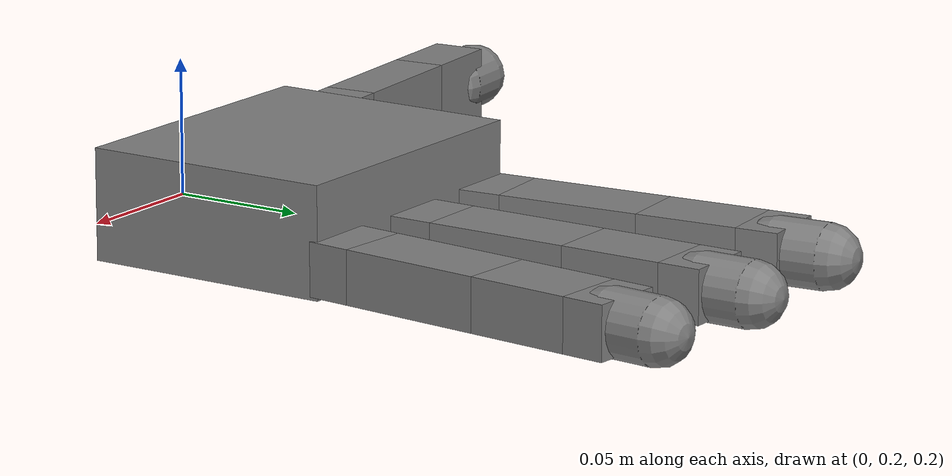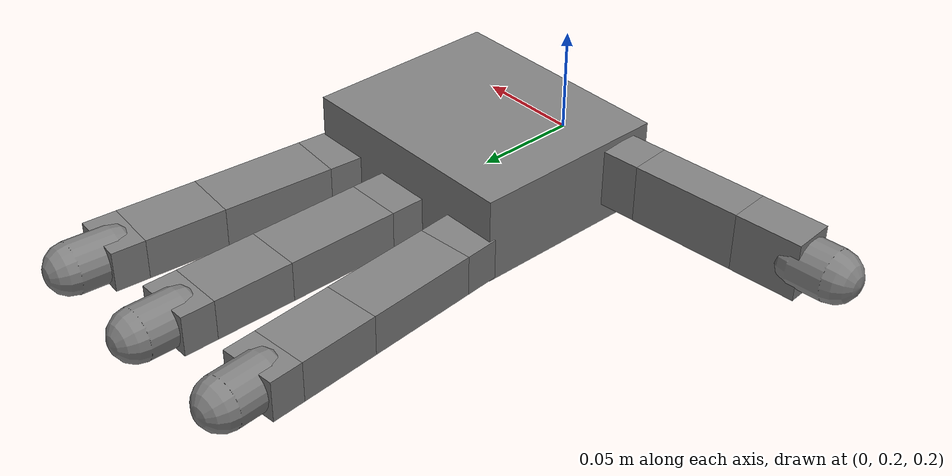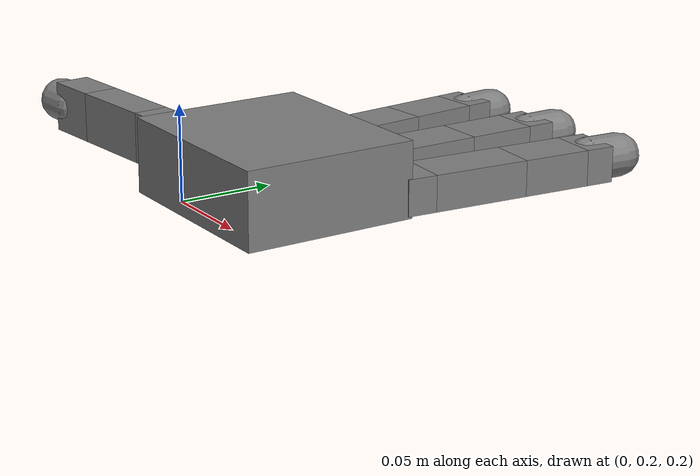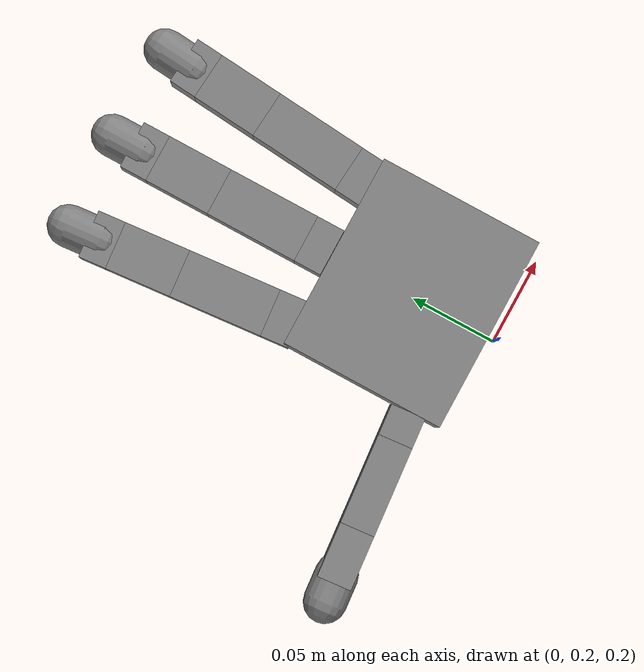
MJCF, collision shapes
<mujoco model="allegro_right">
  <compiler angle="radian"  autolimits="true"/>

  <option cone="elliptic" impratio="10"/>

  <default>
    <default class="allegro_right">
      <joint axis="0 1 0" damping=".1"/>
      <position kp="1"/>
      <geom density="800"/>

      <default class="visual">
        <geom type="mesh" contype="0" conaffinity="0" group="2" material="black"/>
        <default class="palm_visual">
          <geom mesh="base_link"/>
        </default>
        <default class="base_visual">
          <geom mesh="link_0.0"/>
        </default>
        <default class="proximal_visual">
          <geom mesh="link_1.0"/>
        </default>
        <default class="medial_visual">
          <geom mesh="link_2.0"/>
        </default>
        <default class="distal_visual">
          <geom mesh="link_3.0"/>
        </default>
        <default class="fingertip_visual">
          <geom pos="0 0 0.0267" material="white" mesh="link_3.0_tip"/>
        </default>
        <default class="thumbtip_visual">
          <geom pos="0 0 0.0423" material="white" mesh="link_15.0_tip"/>
        </default>
      </default>

      <default class="collision">
        <geom group="3" type="box" mass="0"/>
        <default class="palm_collision">
          <geom size="0.0204 0.0565 0.0475" pos="-0.0093 0 -0.0475"/>
        </default>
        <default class="base_collision">
          <geom size="0.0098 0.01375 0.0082" pos="0 0 0.0082"/>
          <default class="thumb_base_collision">
            <geom size="0.0179 0.017 0.02275" pos="-0.0179 0.009 0.0145"/>
          </default>
        </default>
        <default class="proximal_collision">
          <geom size="0.0098 0.01375 0.027" pos="0 0 0.027"/>
          <default class="thumb_proximal_collision">
            <geom size="0.0098 0.01375 0.00885" pos="0 0 0.00885"/>
          </default>
        </default>
        <default class="medial_collision">
          <geom size="0.0098 0.01375 0.0192" pos="0 0 0.0192"/>
          <default class="thumb_medial_collision">
            <geom size="0.0098 0.01375 0.0257" pos="0 0 0.0257"/>
          </default>
        </default>
        <default class="distal_collision">
          <geom size="0.0098 0.01375 0.008" pos="0 0 0.008"/>
          <default class="thumb_distal_collision">
            <geom size="0.0098 0.01375 0.0157" pos="0 0 0.0157"/>
          </default>
        </default>
        <default class="fingertip_collision">
          <geom type="capsule" size="0.012 0.01" pos="0 0 0.019"/>
          <default class="thumbtip_collision">
            <geom type="capsule" size="0.012 0.008" pos="0 0 0.035"/>
          </default>
        </default>
      </default>

      <default class="base">
        <joint axis="0 0 1" range="-0.47 0.47"/>
        <position ctrlrange="-0.47 0.47"/>
      </default>
      <default class="proximal">
        <joint range="-0.196 1.61"/>
        <position ctrlrange="-0.196 1.61"/>
      </default>
      <default class="medial">
        <joint range="-0.174 1.709"/>
        <position ctrlrange="-0.174 1.709"/>
      </default>
      <default class="distal">
        <joint range="-0.227 1.618"/>
        <position ctrlrange="-0.227 1.618"/>
      </default>
      <default class="thumb_base">
        <joint axis="-1 0 0" range="0.263 1.396"/>
        <position ctrlrange="0.263 1.396"/>
      </default>
      <default class="thumb_proximal">
        <joint axis="0 0 1" range="-0.105 1.163"/>
        <position ctrlrange="-0.105 1.163"/>
      </default>
      <default class="thumb_medial">
        <joint range="-0.189 1.644"/>
        <position ctrlrange="-0.189 1.644"/>
      </default>
      <default class="thumb_distal">
        <joint range="-0.162 1.719"/>
        <position ctrlrange="-0.162 1.719"/>
      </default>
    </default>
  </default>

  <asset>
    <material name="black" rgba="0.2 0.2 0.2 1"/>
    <material name="white" rgba="0.9 0.9 0.9 1"/>

    <mesh file="../objects/wonik_allegro/assets/base_link.stl"/>
    <mesh file="../objects/wonik_allegro/assets/link_0.0.stl"/>
    <mesh file="../objects/wonik_allegro/assets/link_1.0.stl"/>
    <mesh file="../objects/wonik_allegro/assets/link_2.0.stl"/>
    <mesh file="../objects/wonik_allegro/assets/link_3.0.stl"/>
    <mesh file="../objects/wonik_allegro/assets/link_3.0_tip.stl"/>
    <mesh file="../objects/wonik_allegro/assets/link_12.0_right.stl"/>
    <mesh file="../objects/wonik_allegro/assets/link_13.0.stl"/>
    <mesh file="../objects/wonik_allegro/assets/link_14.0.stl"/>
    <mesh file="../objects/wonik_allegro/assets/link_15.0.stl"/>
    <mesh file="../objects/wonik_allegro/assets/link_15.0_tip.stl"/>
  </asset>

  <worldbody>
    <body name="forearm" pos="0 0.3 0.2" euler="0 3.14 1.57">
      <inertial pos="0.001 -0.002 0.29" quat="0.982037 -0.0160006 0 -0.188007" mass="4" diaginertia="0.01 0.01 0.0075" />
      <joint name="ARTx" pos="0 0 0" axis="0 1 0" type="slide" range="-0.4 0.6" damping="20" />
      <joint name="ARTy" pos="0 0 0" axis="0 0 -1" type="slide" range="-0.1 0.2" damping="20" />
      <joint name="ARTz" pos="0 0 0" axis="1 0 0" type="slide" range="-0.3 0.5" damping="20" />
      <joint name="ARRx" pos="0 0 0" axis="0 1 0" range="-1.5 1.5" damping="20" />
      <joint name="ARRy" pos="0 0 0" axis="0 0 1" range="-1.5 1.5" damping="20" />
      <joint name="ARRz" pos="0 0 0" axis="1 0 0" range="-1.5 1.5" damping="20" />

    <body name="palm" quat="0 1 0 1" childclass="allegro_right">
      <geom class="palm_visual" mesh="base_link"/>
      <geom class="palm_collision"/>
      <!-- First finger -->
      <body name="ff_base" pos="0 0.0435 -0.001542" quat="0.999048 -0.0436194 0 0">
        <inertial mass="0.0119" pos="0 0.0435 -0.001542" diaginertia="1e-4 1e-4 1e-4"/>
        <joint name="ffj0" class="base"/>
        <geom class="base_visual"/>
        <geom class="base_collision"/>
        <body name="ff_proximal" pos="0 0 0.0164">
          <inertial mass="0.065" pos="0 0 0.0164" diaginertia="1e-4 1e-4 1e-4"/>
          <joint name="ffj1" class="proximal"/>
          <geom class="proximal_visual"/>
          <geom class="proximal_collision"/>
          <body name="ff_medial" pos="0 0 0.054">
            <inertial mass="0.0355" pos="0 0 0.054" diaginertia="1e-4 1e-4 1e-4"/>
            <joint name="ffj2" class="medial"/>
            <geom class="medial_visual"/>
            <geom class="medial_collision"/>
            <body name="ff_distal" pos="0 0 0.0384">
              <inertial mass="0.0096" pos="0 0 0.0384" diaginertia="1e-4 1e-4 1e-4"/>
              <joint name="ffj3" class="distal"/>
              <geom class="distal_visual"/>
              <geom class="distal_collision"/>
              <body name="ff_tip">
                <geom class="fingertip_visual"/>
                <geom class="fingertip_collision"/>
              </body>
            </body>
          </body>
        </body>
      </body>
      <!-- Middle finger -->
      <body name="mf_base" pos="0 0 0.0007">
      <inertial mass="0.0119" pos="0 0 0.0007" diaginertia="1e-4 1e-4 1e-4"/>
        <joint name="mfj0" class="base"/>
        <geom class="base_visual"/>
        <geom class="base_collision"/>
        <body name="mf_proximal" pos="0 0 0.0164">
          <inertial mass="0.065" pos="0 0 0.0164" diaginertia="1e-4 1e-4 1e-4"/>
          <joint name="mfj1" class="proximal"/>
          <geom class="proximal_visual"/>
          <geom class="proximal_collision"/>
          <body name="mf_medial" pos="0 0 0.054">
            <inertial mass="0.0355" pos="0 0 0.054" diaginertia="1e-4 1e-4 1e-4"/>
            <joint name="mfj2" class="medial"/>
            <geom class="medial_visual"/>
            <geom class="medial_collision"/>
            <body name="mf_distal" pos="0 0 0.0384">
              <inertial mass="0.0096" pos="0 0 0.0384" diaginertia="1e-4 1e-4 1e-4"/>
              <joint name="mfj3" class="distal"/>
              <geom class="distal_visual"/>
              <geom class="distal_collision"/>
              <body name="mf_tip">
                <geom class="fingertip_visual"/>
                <geom class="fingertip_collision"/>
              </body>
            </body>
          </body>
        </body>
      </body>
      <!-- Ring finger -->
      <body name="rf_base" pos="0 -0.0435 -0.001542" quat="0.999048 0.0436194 0 0">
        <inertial mass="0.0119" pos="0 -0.0435 -0.001542" diaginertia="1e-4 1e-4 1e-4"/>
        <joint name="rfj0" class="base"/>
        <geom class="base_visual"/>
        <geom class="base_collision"/>
        <body name="rf_proximal" pos="0 0 0.0164">
          <inertial mass="0.065" pos="0 0 0.0164" diaginertia="1e-4 1e-4 1e-4"/>
          <joint name="rfj1" class="proximal"/>
          <geom class="proximal_visual"/>
          <geom class="proximal_collision"/>
          <body name="rf_medial" pos="0 0 0.054">
            <inertial mass="0.0355" pos="0 0 0.054" diaginertia="1e-4 1e-4 1e-4"/>
            <joint name="rfj2" class="medial"/>
            <geom class="medial_visual"/>
            <geom class="medial_collision"/>
            <body name="rf_distal" pos="0 0 0.0384">
              <inertial mass="0.0096" pos="0 0 0.0384" diaginertia="1e-4 1e-4 1e-4"/>
              <joint name="rfj3" class="distal"/>
              <geom class="distal_visual"/>
              <geom class="distal_collision"/>
              <body name="rf_tip">
                <geom class="fingertip_visual"/>
                <geom class="fingertip_collision"/>
              </body>
            </body>
          </body>
        </body>
      </body>
      <!-- Thumb -->
      <body name="th_base" pos="-0.0182 0.019333 -0.045987" quat="0.477714 -0.521334 -0.521334 -0.477714">
        <inertial mass="0.0176" pos="-0.0182 0.019333 -0.045987" diaginertia="1e-4 1e-4 1e-4"/>
        <joint name="thj0" class="thumb_base"/>
        <geom class="visual" mesh="link_12.0_right"/>
        <geom class="thumb_base_collision"/>
        <body name="th_proximal" pos="-0.027 0.005 0.0399">
          <inertial mass="0.0119" pos="-0.027 0.005 0.0399" diaginertia="1e-4 1e-4 1e-4"/>
          <joint name="thj1" class="thumb_proximal"/>
          <geom class="visual" mesh="link_13.0"/>
          <geom class="thumb_proximal_collision"/>
          <body name="th_medial" pos="0 0 0.0177">
            <inertial mass="0.038" pos="0 0 0.0177" diaginertia="1e-4 1e-4 1e-4"/>
            <joint name="thj2" class="thumb_medial"/>
            <geom class="visual" mesh="link_14.0"/>
            <geom class="thumb_medial_collision"/>
            <body name="th_distal" pos="0 0 0.0514">
              <inertial mass="0.0388" pos="0 0 0.0514" diaginertia="1e-4 1e-4 1e-4"/>
              <joint name="thj3" class="thumb_distal"/>
              <geom class="visual" mesh="link_15.0"/>
              <geom class="thumb_distal_collision"/>
              <body name="th_tip">
                <geom class="thumbtip_visual"/>
                <geom class="thumbtip_collision"/>
              </body>
            </body>
          </body>
        </body>
      </body>
    </body>
              </body>
  </worldbody>

  <contact>
    <exclude body1="palm" body2="ff_base"/>
    <exclude body1="palm" body2="mf_base"/>
    <exclude body1="palm" body2="rf_base"/>
    <exclude body1="palm" body2="th_base"/>
    <exclude body1="palm" body2="th_proximal"/>
  </contact>

  <actuator>

    <general name="A_ARTx" joint="ARTx" ctrlrange="-0.4 0.6" biastype="affine" gainprm="500 0 0" biasprm="0 -200 0" />
    <general name="A_ARTy" joint="ARTy" ctrlrange="-0.1 0.2" biastype="affine" gainprm="500 0 0" biasprm="0 -200 0" />
    <general name="A_ARTz" joint="ARTz" ctrlrange="-0.3 0.5" biastype="affine" gainprm="500 0 0" biasprm="0 -200 0" />
    <general name="A_ARRx" joint="ARRx" ctrlrange="-1.5 1.5" biastype="affine" gainprm="500 0 0" biasprm="0 -200 0" />
    <general name="A_ARRy" joint="ARRy" ctrlrange="-1.5 1.5" biastype="affine" gainprm="500 0 0" biasprm="0 -200 0" />
    <general name="A_ARRz" joint="ARRz" ctrlrange="-1.5 1.5" biastype="affine" gainprm="500 0 0" biasprm="0 -200 0" />

    <position name="ffa0" joint="ffj0" class="base"/>
    <position name="ffa1" joint="ffj1" class="proximal"/>
    <position name="ffa2" joint="ffj2" class="medial"/>
    <position name="ffa3" joint="ffj3" class="distal"/>
    <position name="mfa0" joint="mfj0" class="base"/>
    <position name="mfa1" joint="mfj1" class="proximal"/>
    <position name="mfa2" joint="mfj2" class="medial"/>
    <position name="mfa3" joint="mfj3" class="distal"/>
    <position name="rfa0" joint="rfj0" class="base"/>
    <position name="rfa1" joint="rfj1" class="proximal"/>
    <position name="rfa2" joint="rfj2" class="medial"/>
    <position name="rfa3" joint="rfj3" class="distal"/>
    <position name="tha0" joint="thj0" class="thumb_base"/>
    <position name="tha1" joint="thj1" class="thumb_proximal"/>
    <position name="tha2" joint="thj2" class="thumb_medial"/>
    <position name="tha3" joint="thj3" class="thumb_distal"/>

  </actuator>
</mujoco>
